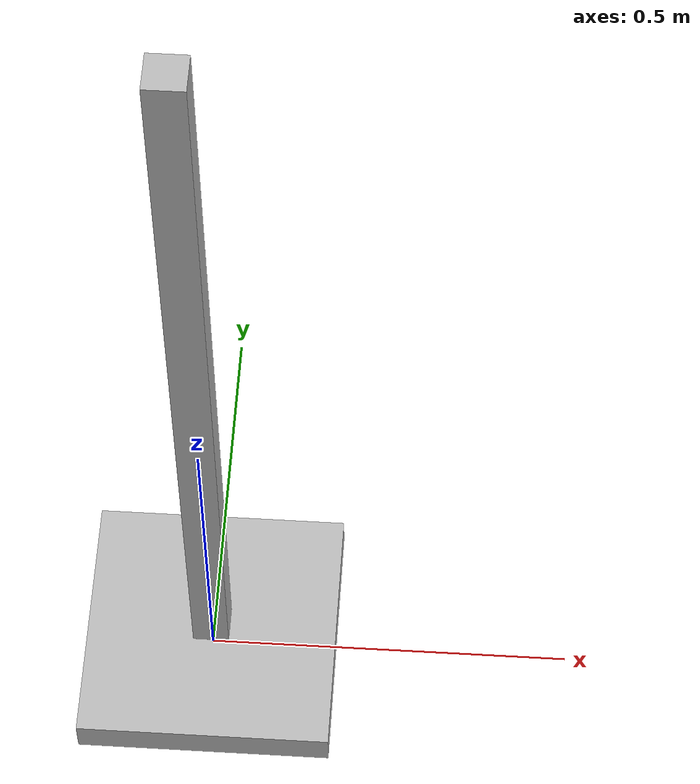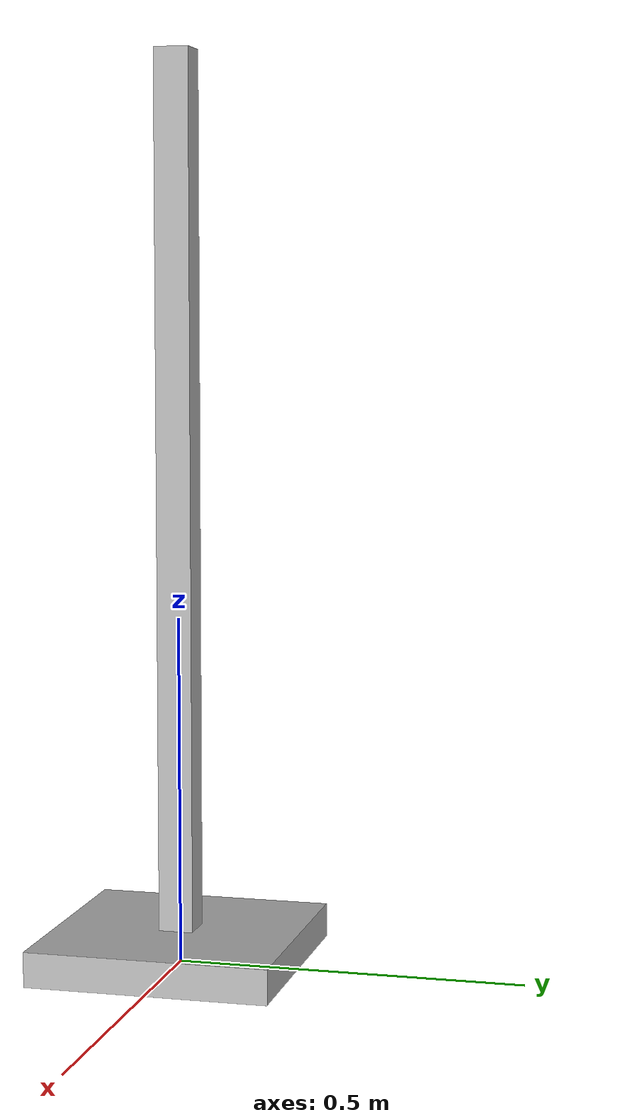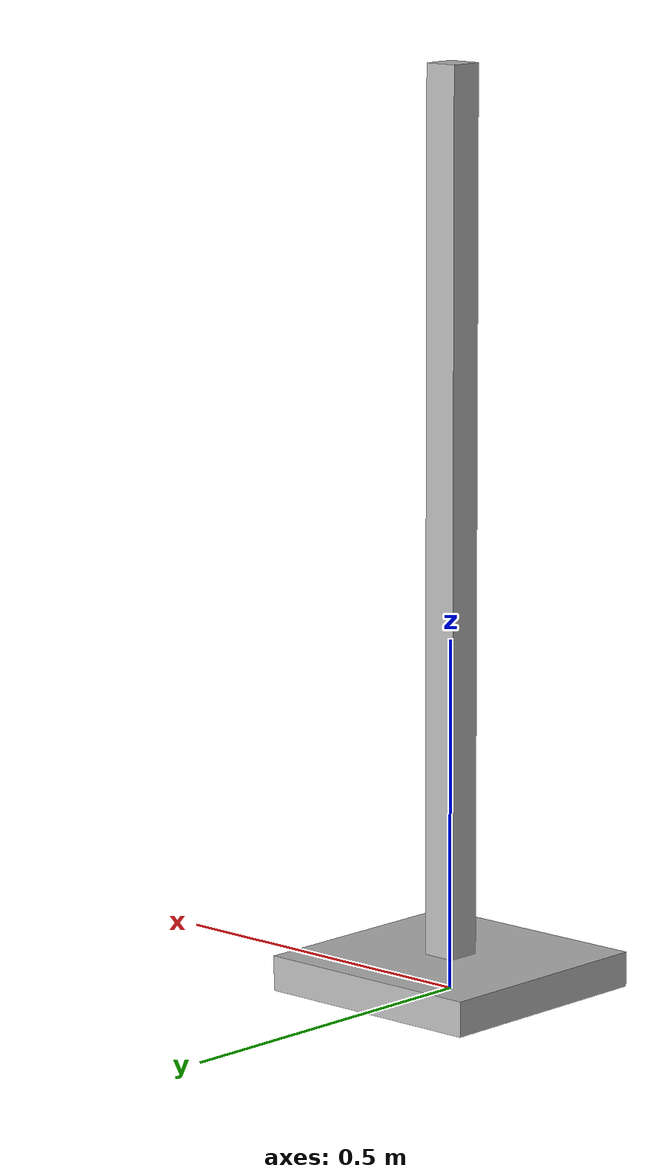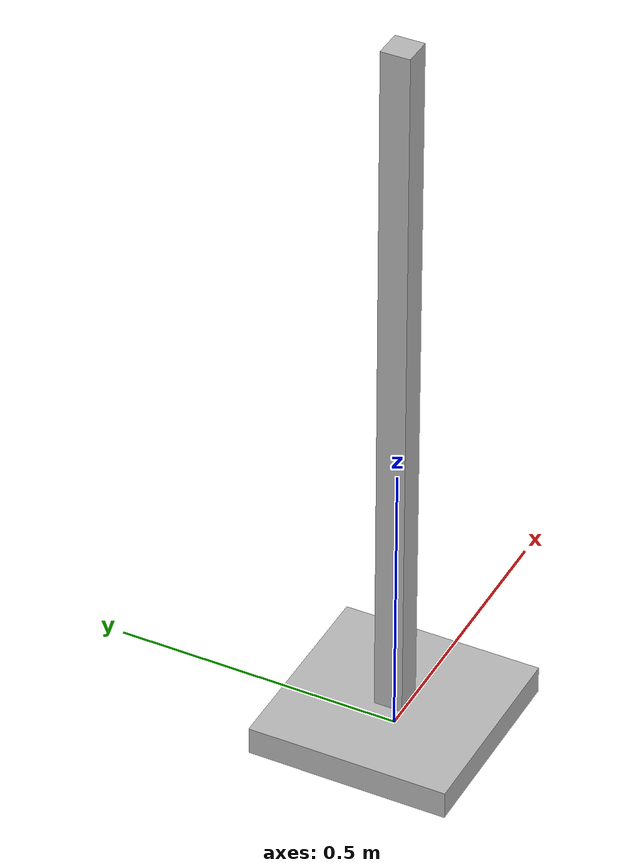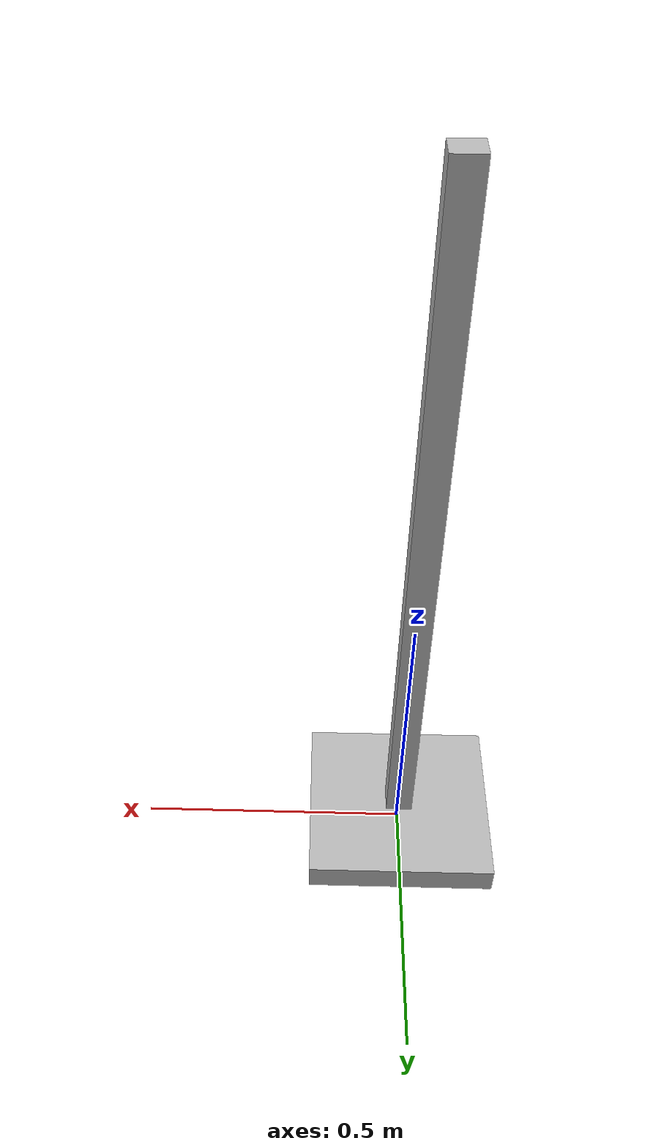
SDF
<?xml version="1.0"?>
<sdf version="1.6">
  <model name="rwc2019/coat_hanger">
    <link name="1_link">
      <collision name="1_col">
        <geometry>
          <box>
            <size>0.35 0.35 0.05</size>
          </box>
        </geometry>
      </collision>
      <visual name="1_vis">
        <geometry>
          <box>
            <size>0.35 0.35 0.05</size>
          </box>
        </geometry>
      </visual>
      <pose>0.0 0.0 0.025 0 0 0</pose>
    </link>
    <link name="2_link">
      <collision name="2_col">
        <geometry>
          <box>
            <size>0.05 0.05 1.3</size>
          </box>
        </geometry>
      </collision>
      <visual name="2_vis">
        <geometry>
          <box>
            <size>0.05 0.05 1.3</size>
          </box>
        </geometry>
      </visual>
      <pose>0.0 0.0 0.65 0 0 0</pose>
    </link>
    <link name="in_front_of">
      <virtual_volume name="in_front_of_vv">
        <geometry>
          <box>
            <size>0.2 0.15 0.01</size>
          </box>
        </geometry>
        <pose>0.675 0.0 0.005 0 0 0</pose>
      </virtual_volume>
    </link>
    <static>true</static>
  </model>
</sdf>
